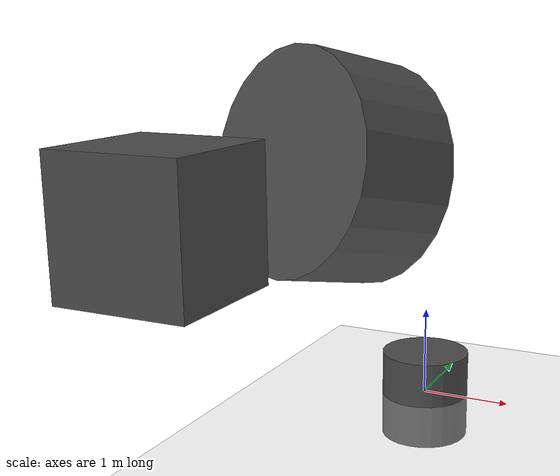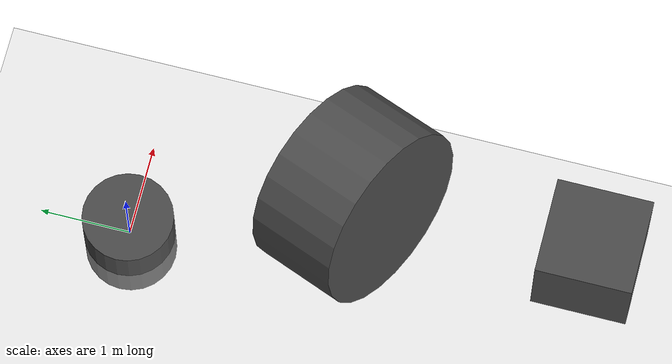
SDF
<sdf version="1.6">
  <world name="default">
    <physics name="1ms" type="ignored">
      <max_step_size>0.001</max_step_size>
      <real_time_factor>1.0</real_time_factor>
    </physics>

    <light type="directional" name="sun">
      <cast_shadows>true</cast_shadows>
      <pose>0 0 10 0 0 0</pose>
      <diffuse>0.8 0.8 0.8 1</diffuse>
      <specular>0.2 0.2 0.2 1</specular>
      <attenuation>
        <range>1000</range>
        <constant>0.9</constant>
        <linear>0.01</linear>
        <quadratic>0.001</quadratic>
      </attenuation>
      <direction>-0.5 0.1 -0.9</direction>
    </light>

    <model name="ground_plane">
      <static>true</static>
      <link name="link">
        <collision name="collision">
          <geometry>
            <plane>
              <normal>0 0 1</normal>
              <size>100 100</size>
            </plane>
          </geometry>
        </collision>
        <visual name="visual">
          <geometry>
            <plane>
              <normal>0 0 1</normal>
              <size>100 100</size>
            </plane>
          </geometry>
          <material>
            <ambient>0.8 0.8 0.8 1</ambient>
            <diffuse>0.8 0.8 0.8 1</diffuse>
            <specular>0.8 0.8 0.8 1</specular>
          </material>
        </visual>
      </link>
    </model>
<model name="joint1">
      <pose>0.0 0 0 0 0 0</pose>
      <link name="joint1_link">
        <inertial>
          <inertia>
            <ixx>1</ixx>
            <ixy>0</ixy>
            <ixz>0</ixz>
            <iyy>1</iyy>
            <iyz>0</iyz>
            <izz>1</izz>
          </inertia>
          <mass>1.0</mass>
        </inertial>
        <collision name="joint1_collision">
          <geometry>
            <cylinder>
              <radius>1.0</radius>
              <length>1.0</length>
            </cylinder>
          </geometry>
        </collision>

        <visual name="joint1_visual">
          <geometry>
            <cylinder>
              <radius>0.5</radius>
              <length>1.0</length>
            </cylinder>
          </geometry>
          <material>
            <ambient>0.3 0.3 0.3 1</ambient>
            <diffuse>0.3 0.3 0.3 1</diffuse>
            <specular>0.3 0.5 0.3 1</specular>
          </material>
        </visual>
      </link>
    </model>
<model name="joint2">
      <pose> 0 -2.5 3 90 90 0</pose>
      <link name="joint2_link">
        <inertial>
          <inertia>
            <ixx>1</ixx>
            <ixy>0</ixy>
            <ixz>0</ixz>
            <iyy>1</iyy>
            <iyz>0</iyz>
            <izz>1</izz>
          </inertia>
          <mass>1.0</mass>
        </inertial>
        <collision name="joint2_collision">
          <geometry>
            <cylinder>
              <radius>1.0</radius>
              <length>1.0</length>
            </cylinder>
          </geometry>
        </collision>

        <visual name="joint2_visual">
          <geometry>
            <cylinder>
              <radius>1.0</radius>
              <length>1.0</length>
            </cylinder>
          </geometry>
          <material>
            <ambient>0.3 0.3 0.3 1</ambient>
            <diffuse>0.3 0.3 0.3 1</diffuse>
            <specular>0.3 0.5 0.3 1</specular>
          </material>
        </visual>
      </link>
    </model>
    <model name="joint3">
      <pose>0.0 -5 3 0 0 0</pose>
      <link name="joint3_link">
        <inertial>
          <inertia>
            <ixx>1</ixx>
            <ixy>0</ixy>
            <ixz>0</ixz>
            <iyy>1</iyy>
            <iyz>0</iyz>
            <izz>1</izz>
          </inertia>
          <mass>1.0</mass>
        </inertial>
        <collision name="joint3_collision">
          <geometry>
            <box>
              <size>1 1 1</size>
            </box>
          </geometry>
        </collision>

        <visual name="joint3_visual">
          <geometry>
            <box>
              <size>1 1 1</size>
            </box>
          </geometry>
          <material>
            <ambient>0.3 0.3 0.3 1</ambient>
            <diffuse>0.3 0.3 0.3 1</diffuse>
            <specular>0.3 0.5 0.3 1</specular>
          </material>
        </visual>
      </link>
    </model>
  </world>
</sdf>
